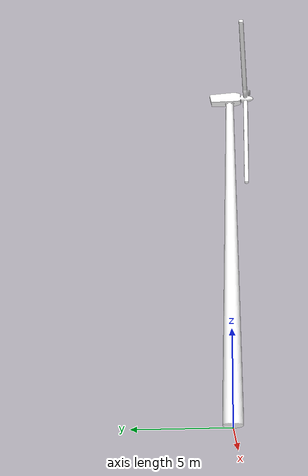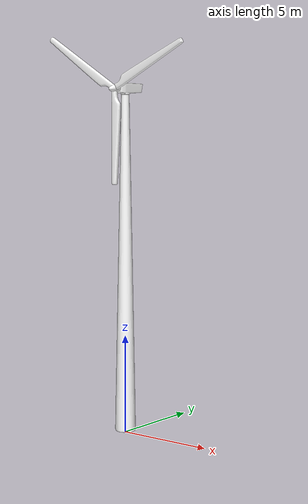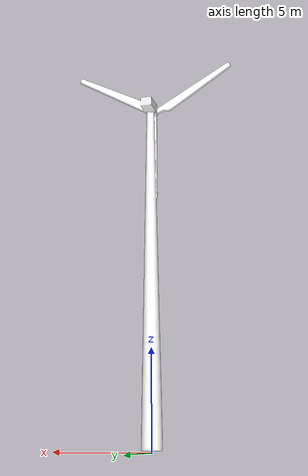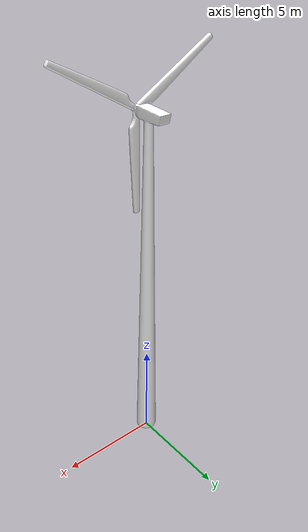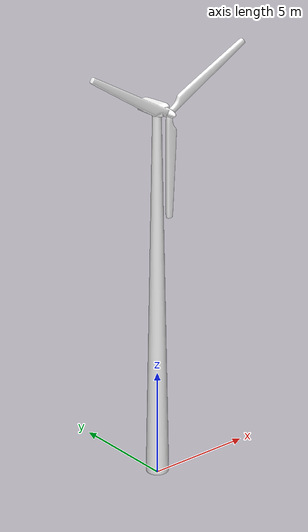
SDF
<?xml version="1.0" ?>
<sdf version="1.9">
  <model name="wind_turbine">
    <static>true</static>
    <pose>0 0 0.1 0 0 0</pose>

    <link name="turbine">
      <collision name="turbine_collision">
        <geometry>
          <mesh>
            <uri>model://wind_turbine/meshes/wind_turbine.stl</uri>
            <!-- Scale increased by 4 times -->
            <scale>0.052 0.052 0.052</scale>
          </mesh>
        </geometry>
        <surface>
          <contact>
            <collide_without_contact>false</collide_without_contact>
            <collide_bitmask>1</collide_bitmask>
          </contact>
          <friction>
            <ode>
              <mu>1.0</mu>
              <mu2>1.0</mu2>
            </ode>
          </friction>
          <bounce>
            <restitution_coefficient>0.0</restitution_coefficient>
            <threshold>1000.0</threshold>
          </bounce>
        </surface>
      </collision>

      <visual name="turbine_visual">
        <geometry>
          <mesh>
            <uri>model://wind_turbine/meshes/wind_turbine.obj</uri>
            <!-- Scale increased by 4 times -->
            <scale>0.002 0.002 0.002</scale>
          </mesh>
        </geometry>
        <material>
          <lighting>true</lighting>
            <diffuse>1.0 1.0 1.0 1</diffuse> <!-- Shiny white -->
            <ambient>1.0 1.0 1.0 1</ambient> <!-- Shiny white in ambient light -->
            <specular>1.0 1.0 1.0 1</specular> <!-- Highly reflective white -->
          <pbr>
            <metal>
              <metalness>0.1</metalness>
              <roughness>0.2</roughness>
            </metal>
          </pbr>
        </material>
        <cast_shadows>true</cast_shadows>
      </visual>

      <self_collide>false</self_collide>
      <enable_wind>true</enable_wind>
      <kinematic>false</kinematic>
    </link>
  </model>
</sdf>
